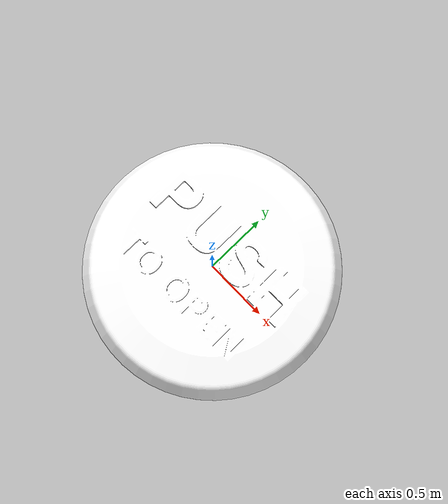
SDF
<?xml version="1.0"?>
<sdf version="1.7">
  <model name="push_button">
    <static>false</static>
    <pose>0 0 0 0 0 0</pose>

    <!-- Base plate with mesh -->
    <link name="base">
      <pose>0 0 0 0 0 0</pose>
      <inertial>
        <mass>0.5</mass>
        <inertia>
          <ixx>0.001</ixx>
          <iyy>0.001</iyy>
          <izz>0.001</izz>
        </inertia>
      </inertial>

      <collision name="base_collision">
        <geometry>
          <mesh>
            <uri>meshes/button.dae</uri>
            <scale>1 1 1</scale>
          </mesh>
        </geometry>
        <surface>
          <friction>
            <ode>
              <mu>0.8</mu>
              <mu2>0.8</mu2>
            </ode>
          </friction>
          <contact>
            <ode>
              <kp>1000000.0</kp>
              <kd>100.0</kd>
            </ode>
          </contact>
        </surface>
      </collision>

      <visual name="base_visual">
        <geometry>
          <mesh>
            <uri>meshes/button.dae</uri>
            <scale>1 1 1</scale>
          </mesh>
        </geometry>
        <material>
          <ambient>1 1 1 1</ambient>
          <diffuse>1 1 1 1</diffuse>
          <specular>0.3 0.3 0.3 1</specular>
        </material>
      </visual>
    </link>

  </model>
</sdf>
